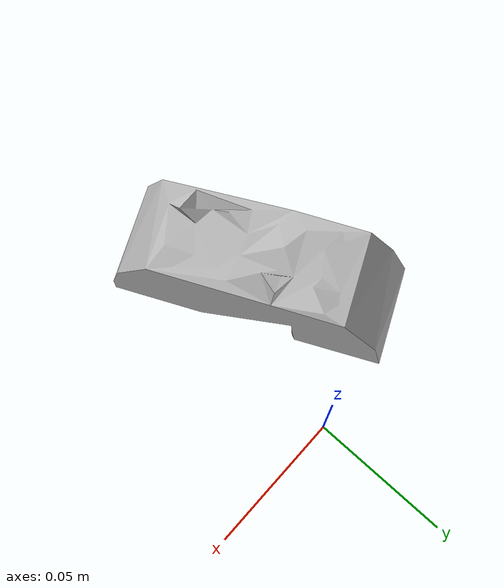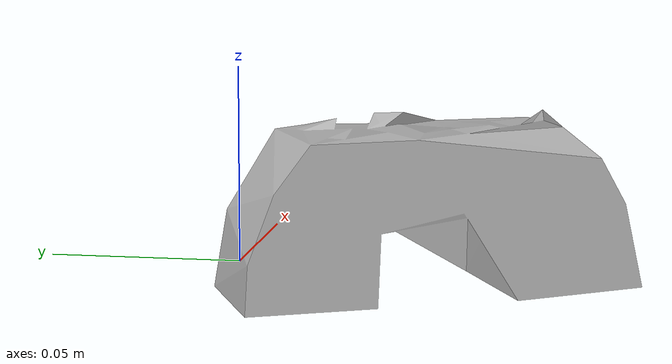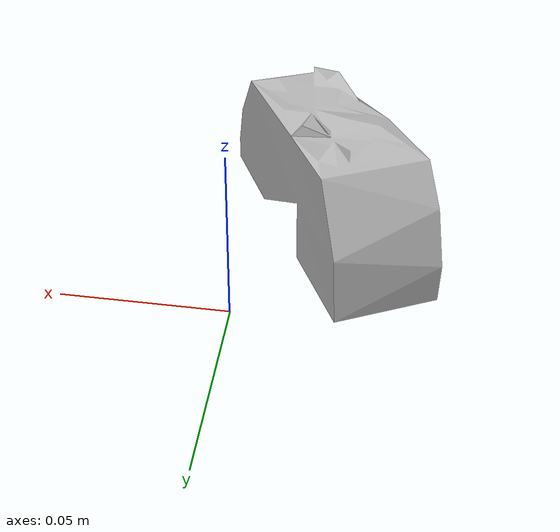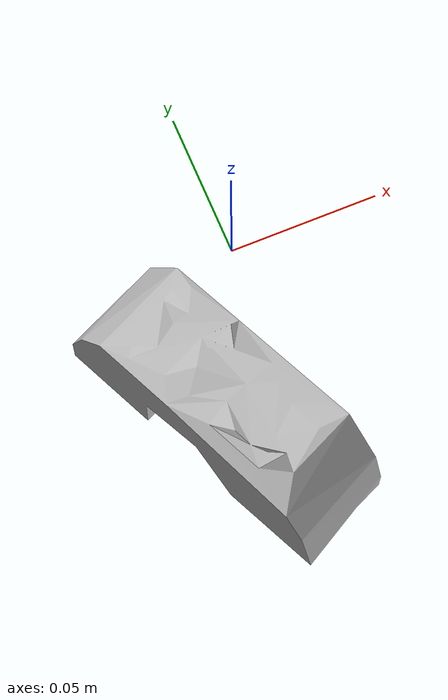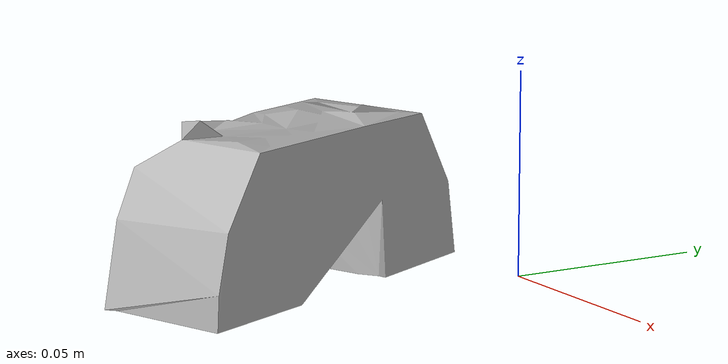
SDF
<?xml version='1.0'?>
<sdf version="1.4">
  <model name="073-e_lego_duplo">
    <static>false</static>
    <link name="link">
      <inertial>
        <pose>-0.0233000296337038 -0.05006462840423977 0.019263571708703905 1.5698234117642709 0.004888176497864248 0.4354884109865948</pose>
        <mass>0.011374822139233765</mass>
        <inertia>
          <ixx>8.628298035655633e-06</ixx>
          <ixy>-4.81660508319997e-23</ixy>
          <ixz>5.763923438376182e-22</ixz>
          <iyy>7.987030716820573e-06</iyy>
          <iyz>-3.167152186885567e-22</iyz>
          <izz>2.564481591112465e-06</izz>
        </inertia>
      </inertial>
      <collision name="collision">
        <geometry>
          <mesh>
            <!-- Use a downsampled mesh for collisions -->
            <uri>model:///073-e_lego_duplo/073-e_lego_duplo_250_collision.stl</uri>
	        </mesh>
        </geometry>
        <surface>
      </surface>
      </collision>
      <visual name="visual">
        <geometry>
          <mesh>
            <uri>model:///073-e_lego_duplo/textured.obj</uri>
	        </mesh>
        </geometry>
        <material>
          <script>
            <uri>model:///073-e_lego_duplo/073-e_lego_duplo.material</uri>
            <name>073-e_lego_duplo</name>
          </script>
        </material>
      </visual>
    </link>
  </model>
</sdf>
